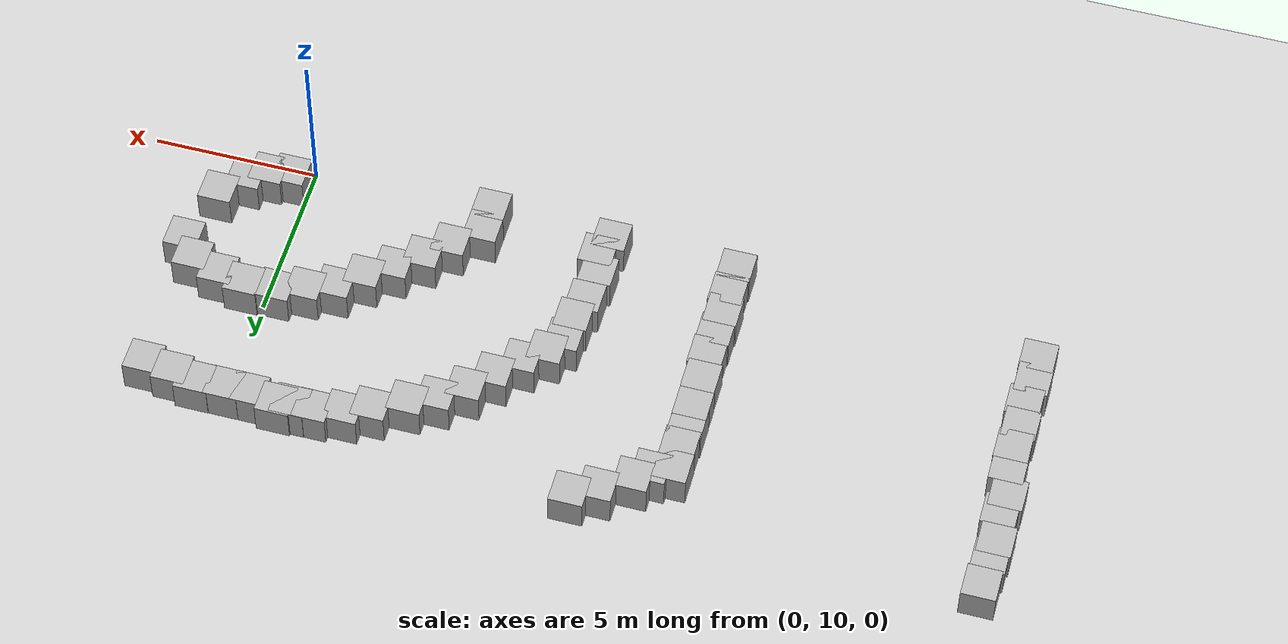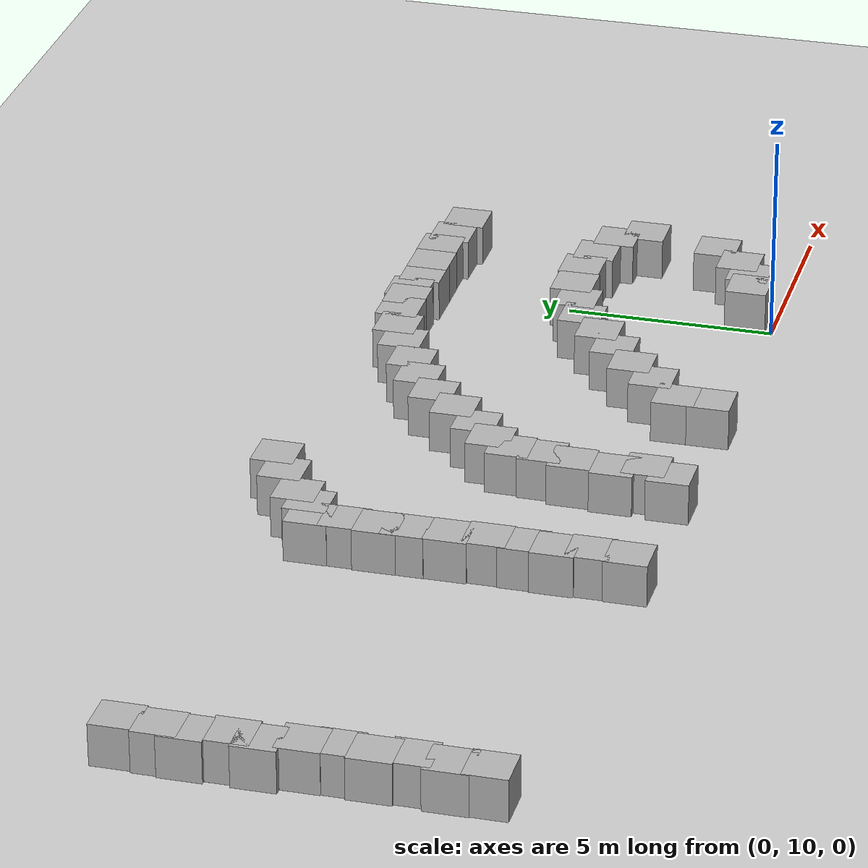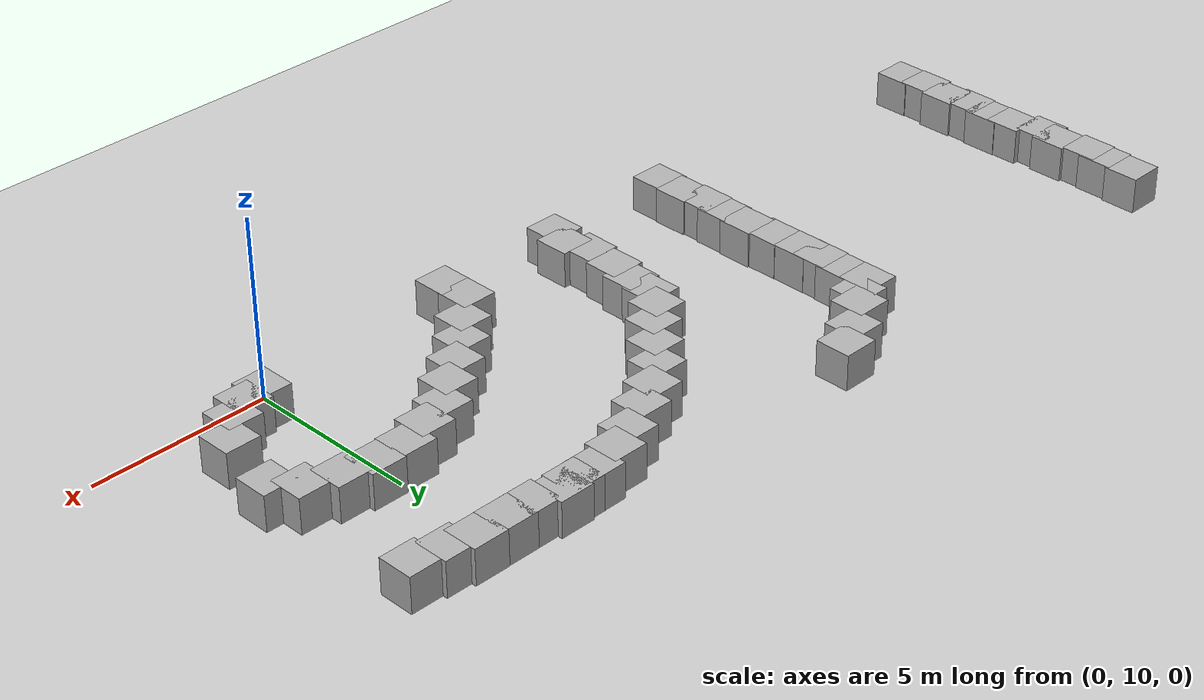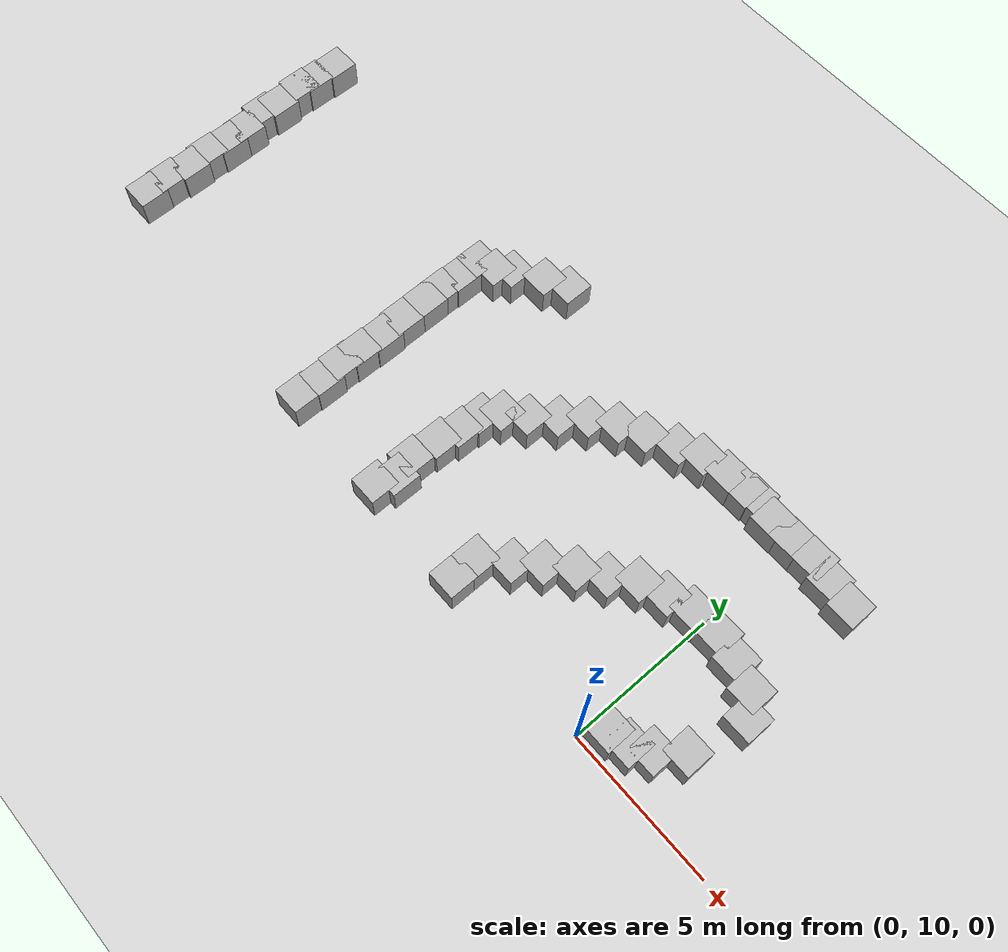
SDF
<sdf version="1.10">
 <world name="empty">
  <model name="ground_plane">
   <static>true</static>
   <link name="link">
    <collision name="collision">
     <geometry><plane><normal>0 0 1</normal><size>100 100</size></plane></geometry>
    </collision>
    <visual name="visual">
     <geometry><plane><normal>0 0 1</normal><size>100 100</size></plane></geometry>
     <material>
      <ambient>0.800000012 0.800000012 0.800000012 1</ambient>
      <diffuse>0.800000012 0.800000012 0.800000012 1</diffuse>
      <specular>0.800000012 0.800000012 0.800000012 1</specular>
     </material>
    </visual>
    <inertial>
     <mass>1</mass>
     <inertia><ixx>1</ixx><ixy>0</ixy><ixz>0</ixz><iyy>1</iyy><iyz>0</iyz><izz>1</izz></inertia>
    </inertial>
   </link>
  </model>
  <model name="box_7_30">
   <pose>-9.2735995112584675 10.423714714288682 0.5 0 0 0</pose>
   <link name="box_link">
    <inertial>
     <inertia><ixx>0.16666</ixx><ixy>0</ixy><ixz>0</ixz><iyy>0.16666</iyy><iyz>0</iyz><izz>0.16666</izz></inertia>
     <mass>1</mass>
    </inertial>
    <collision name="box_collision"><geometry><box><size>1 1 1</size></box></geometry></collision>
    <visual name="box_visual">
     <geometry><box><size>1 1 1</size></box></geometry>
     <material>
      <ambient>0.300000012 0.300000012 0.300000012 1</ambient>
      <diffuse>0.699999988 0.699999988 0.699999988 1</diffuse>
      <specular>1 1 1 1</specular>
     </material>
    </visual>
   </link>
   <static>false</static>
  </model>
  <model name="box_7_31">
   <pose>-9.0387820674815593 11.044542939793455 0.5 0 0 0</pose>
   <link name="box_link">
    <inertial>
     <inertia><ixx>0.16666</ixx><ixy>0</ixy><ixz>0</ixz><iyy>0.16666</iyy><iyz>0</iyz><izz>0.16666</izz></inertia>
     <mass>1</mass>
    </inertial>
    <collision name="box_collision"><geometry><box><size>1 1 1</size></box></geometry></collision>
    <visual name="box_visual">
     <geometry><box><size>1 1 1</size></box></geometry>
     <material>
      <ambient>0.300000012 0.300000012 0.300000012 1</ambient>
      <diffuse>0.699999988 0.699999988 0.699999988 1</diffuse>
      <specular>1 1 1 1</specular>
     </material>
    </visual>
   </link>
   <static>false</static>
  </model>
  <model name="box_7_33">
   <pose>-5.5640667379358755 10.292878600199852 0.5 0 0 0</pose>
   <link name="box_link">
    <inertial>
     <inertia><ixx>0.16666</ixx><ixy>0</ixy><ixz>0</ixz><iyy>0.16666</iyy><iyz>0</iyz><izz>0.16666</izz></inertia>
     <mass>1</mass>
    </inertial>
    <collision name="box_collision"><geometry><box><size>1 1 1</size></box></geometry></collision>
    <visual name="box_visual">
     <geometry><box><size>1 1 1</size></box></geometry>
     <material>
      <ambient>0.300000012 0.300000012 0.300000012 1</ambient>
      <diffuse>0.699999988 0.699999988 0.699999988 1</diffuse>
      <specular>1 1 1 1</specular>
     </material>
    </visual>
   </link>
   <static>false</static>
  </model>
  <model name="box_7_34">
   <pose>-5.5623751025306705 11.13049586107932 0.5 0 0 0</pose>
   <link name="box_link">
    <inertial>
     <inertia><ixx>0.16666</ixx><ixy>0</ixy><ixz>0</ixz><iyy>0.16666</iyy><iyz>0</iyz><izz>0.16666</izz></inertia>
     <mass>1</mass>
    </inertial>
    <collision name="box_collision"><geometry><box><size>1 1 1</size></box></geometry></collision>
    <visual name="box_visual">
     <geometry><box><size>1 1 1</size></box></geometry>
     <material>
      <ambient>0.300000012 0.300000012 0.300000012 1</ambient>
      <diffuse>0.699999988 0.699999988 0.699999988 1</diffuse>
      <specular>1 1 1 1</specular>
     </material>
    </visual>
   </link>
   <static>false</static>
  </model>
  <model name="box_7_35">
   <pose>-4.7906994736432598 11.847741545170857 0.5 0 0 0</pose>
   <link name="box_link">
    <inertial>
     <inertia><ixx>0.16666</ixx><ixy>0</ixy><ixz>0</ixz><iyy>0.16666</iyy><iyz>0</iyz><izz>0.16666</izz></inertia>
     <mass>1</mass>
    </inertial>
    <collision name="box_collision"><geometry><box><size>1 1 1</size></box></geometry></collision>
    <visual name="box_visual">
     <geometry><box><size>1 1 1</size></box></geometry>
     <material>
      <ambient>0.300000012 0.300000012 0.300000012 1</ambient>
      <diffuse>0.699999988 0.699999988 0.699999988 1</diffuse>
      <specular>1 1 1 1</specular>
     </material>
    </visual>
   </link>
   <static>false</static>
  </model>
  <model name="box_7_36">
   <pose>-4.1487503221513613 12.499752629387412 0.5 0 0 0</pose>
   <link name="box_link">
    <inertial>
     <inertia><ixx>0.16666</ixx><ixy>0</ixy><ixz>0</ixz><iyy>0.16666</iyy><iyz>0</iyz><izz>0.16666</izz></inertia>
     <mass>1</mass>
    </inertial>
    <collision name="box_collision"><geometry><box><size>1 1 1</size></box></geometry></collision>
    <visual name="box_visual">
     <geometry><box><size>1 1 1</size></box></geometry>
     <material>
      <ambient>0.300000012 0.300000012 0.300000012 1</ambient>
      <diffuse>0.699999988 0.699999988 0.699999988 1</diffuse>
      <specular>1 1 1 1</specular>
     </material>
    </visual>
   </link>
   <static>false</static>
  </model>
  <model name="box_7_37">
   <pose>-3.4200070702478054 13.093346036555435 0.5 0 0 0</pose>
   <link name="box_link">
    <inertial>
     <inertia><ixx>0.16666</ixx><ixy>0</ixy><ixz>0</ixz><iyy>0.16666</iyy><iyz>0</iyz><izz>0.16666</izz></inertia>
     <mass>1</mass>
    </inertial>
    <collision name="box_collision"><geometry><box><size>1 1 1</size></box></geometry></collision>
    <visual name="box_visual">
     <geometry><box><size>1 1 1</size></box></geometry>
     <material>
      <ambient>0.300000012 0.300000012 0.300000012 1</ambient>
      <diffuse>0.699999988 0.699999988 0.699999988 1</diffuse>
      <specular>1 1 1 1</specular>
     </material>
    </visual>
   </link>
   <static>false</static>
  </model>
  <model name="box_7_38">
   <pose>-2.6938789036310262 13.624460364496942 0.5 0 0 0</pose>
   <link name="box_link">
    <inertial>
     <inertia><ixx>0.16666</ixx><ixy>0</ixy><ixz>0</ixz><iyy>0.16666</iyy><iyz>0</iyz><izz>0.16666</izz></inertia>
     <mass>1</mass>
    </inertial>
    <collision name="box_collision"><geometry><box><size>1 1 1</size></box></geometry></collision>
    <visual name="box_visual">
     <geometry><box><size>1 1 1</size></box></geometry>
     <material>
      <ambient>0.300000012 0.300000012 0.300000012 1</ambient>
      <diffuse>0.699999988 0.699999988 0.699999988 1</diffuse>
      <specular>1 1 1 1</specular>
     </material>
    </visual>
   </link>
   <static>false</static>
  </model>
  <model name="box_7_39">
   <pose>-1.9989850460225402 14.212503189778559 0.5 0 0 0</pose>
   <link name="box_link">
    <inertial>
     <inertia><ixx>0.16666</ixx><ixy>0</ixy><ixz>0</ixz><iyy>0.16666</iyy><iyz>0</iyz><izz>0.16666</izz></inertia>
     <mass>1</mass>
    </inertial>
    <collision name="box_collision"><geometry><box><size>1 1 1</size></box></geometry></collision>
    <visual name="box_visual">
     <geometry><box><size>1 1 1</size></box></geometry>
     <material>
      <ambient>0.300000012 0.300000012 0.300000012 1</ambient>
      <diffuse>0.699999988 0.699999988 0.699999988 1</diffuse>
      <specular>1 1 1 1</specular>
     </material>
    </visual>
   </link>
   <static>false</static>
  </model>
  <model name="box_7_40">
   <pose>-1.1857971706400776 14.514397681147491 0.5 0 0 0</pose>
   <link name="box_link">
    <inertial>
     <inertia><ixx>0.16666</ixx><ixy>0</ixy><ixz>0</ixz><iyy>0.16666</iyy><iyz>0</iyz><izz>0.16666</izz></inertia>
     <mass>1</mass>
    </inertial>
    <collision name="box_collision"><geometry><box><size>1 1 1</size></box></geometry></collision>
    <visual name="box_visual">
     <geometry><box><size>1 1 1</size></box></geometry>
     <material>
      <ambient>0.300000012 0.300000012 0.300000012 1</ambient>
      <diffuse>0.699999988 0.699999988 0.699999988 1</diffuse>
      <specular>1 1 1 1</specular>
     </material>
    </visual>
   </link>
   <static>false</static>
  </model>
  <model name="box_7_41">
   <pose>-0.37428216863773067 14.78235191089337 0.5 0 0 0</pose>
   <link name="box_link">
    <inertial>
     <inertia><ixx>0.16666</ixx><ixy>0</ixy><ixz>0</ixz><iyy>0.16666</iyy><iyz>0</iyz><izz>0.16666</izz></inertia>
     <mass>1</mass>
    </inertial>
    <collision name="box_collision"><geometry><box><size>1 1 1</size></box></geometry></collision>
    <visual name="box_visual">
     <geometry><box><size>1 1 1</size></box></geometry>
     <material>
      <ambient>0.300000012 0.300000012 0.300000012 1</ambient>
      <diffuse>0.699999988 0.699999988 0.699999988 1</diffuse>
      <specular>1 1 1 1</specular>
     </material>
    </visual>
   </link>
   <static>false</static>
  </model>
  <model name="box_7_42">
   <pose>0.58515886419377772 14.821408982240174 0.5 0 0 0</pose>
   <link name="box_link">
    <inertial>
     <inertia><ixx>0.16666</ixx><ixy>0</ixy><ixz>0</ixz><iyy>0.16666</iyy><iyz>0</iyz><izz>0.16666</izz></inertia>
     <mass>1</mass>
    </inertial>
    <collision name="box_collision"><geometry><box><size>1 1 1</size></box></geometry></collision>
    <visual name="box_visual">
     <geometry><box><size>1 1 1</size></box></geometry>
     <material>
      <ambient>0.300000012 0.300000012 0.300000012 1</ambient>
      <diffuse>0.699999988 0.699999988 0.699999988 1</diffuse>
      <specular>1 1 1 1</specular>
     </material>
    </visual>
   </link>
   <static>false</static>
  </model>
  <model name="box_7_43">
   <pose>1.432467944502438 14.65757056502021 0.5 0 0 0</pose>
   <link name="box_link">
    <inertial>
     <inertia><ixx>0.16666</ixx><ixy>0</ixy><ixz>0</ixz><iyy>0.16666</iyy><iyz>0</iyz><izz>0.16666</izz></inertia>
     <mass>1</mass>
    </inertial>
    <collision name="box_collision"><geometry><box><size>1 1 1</size></box></geometry></collision>
    <visual name="box_visual">
     <geometry><box><size>1 1 1</size></box></geometry>
     <material>
      <ambient>0.300000012 0.300000012 0.300000012 1</ambient>
      <diffuse>0.699999988 0.699999988 0.699999988 1</diffuse>
      <specular>1 1 1 1</specular>
     </material>
    </visual>
   </link>
   <static>false</static>
  </model>
  <model name="box_7_44">
   <pose>2.313232409721576 14.347938064665058 0.5 0 0 0</pose>
   <link name="box_link">
    <inertial>
     <inertia><ixx>0.16666</ixx><ixy>0</ixy><ixz>0</ixz><iyy>0.16666</iyy><iyz>0</iyz><izz>0.16666</izz></inertia>
     <mass>1</mass>
    </inertial>
    <collision name="box_collision"><geometry><box><size>1 1 1</size></box></geometry></collision>
    <visual name="box_visual">
     <geometry><box><size>1 1 1</size></box></geometry>
     <material>
      <ambient>0.300000012 0.300000012 0.300000012 1</ambient>
      <diffuse>0.699999988 0.699999988 0.699999988 1</diffuse>
      <specular>1 1 1 1</specular>
     </material>
    </visual>
   </link>
   <static>false</static>
  </model>
  <model name="box_7_45">
   <pose>2.7931069684434808 13.714253137140469 0.5 0 0 0</pose>
   <link name="box_link">
    <inertial>
     <inertia><ixx>0.16666</ixx><ixy>0</ixy><ixz>0</ixz><iyy>0.16666</iyy><iyz>0</iyz><izz>0.16666</izz></inertia>
     <mass>1</mass>
    </inertial>
    <collision name="box_collision"><geometry><box><size>1 1 1</size></box></geometry></collision>
    <visual name="box_visual">
     <geometry><box><size>1 1 1</size></box></geometry>
     <material>
      <ambient>0.300000012 0.300000012 0.300000012 1</ambient>
      <diffuse>0.699999988 0.699999988 0.699999988 1</diffuse>
      <specular>1 1 1 1</specular>
     </material>
    </visual>
   </link>
   <static>false</static>
  </model>
  <model name="box_7_48">
   <pose>2.3654978302744891 11.836640538201699 0.5 0 0 0</pose>
   <link name="box_link">
    <inertial>
     <inertia><ixx>0.16666</ixx><ixy>0</ixy><ixz>0</ixz><iyy>0.16666</iyy><iyz>0</iyz><izz>0.16666</izz></inertia>
     <mass>1</mass>
    </inertial>
    <collision name="box_collision"><geometry><box><size>1 1 1</size></box></geometry></collision>
    <visual name="box_visual">
     <geometry><box><size>1 1 1</size></box></geometry>
     <material>
      <ambient>0.300000012 0.300000012 0.300000012 1</ambient>
      <diffuse>0.699999988 0.699999988 0.699999988 1</diffuse>
      <specular>1 1 1 1</specular>
     </material>
    </visual>
   </link>
   <static>false</static>
  </model>
  <model name="box_7_49">
   <pose>1.7334589057079319 11.148289855703363 0.5 0 0 0</pose>
   <link name="box_link">
    <inertial>
     <inertia><ixx>0.16666</ixx><ixy>0</ixy><ixz>0</ixz><iyy>0.16666</iyy><iyz>0</iyz><izz>0.16666</izz></inertia>
     <mass>1</mass>
    </inertial>
    <collision name="box_collision"><geometry><box><size>1 1 1</size></box></geometry></collision>
    <visual name="box_visual">
     <geometry><box><size>1 1 1</size></box></geometry>
     <material>
      <ambient>0.300000012 0.300000012 0.300000012 1</ambient>
      <diffuse>0.699999988 0.699999988 0.699999988 1</diffuse>
      <specular>1 1 1 1</specular>
     </material>
    </visual>
   </link>
   <static>false</static>
  </model>
  <model name="box_7_50">
   <pose>1.1521878267522441 10.792440705397343 0.5 0 0 0</pose>
   <link name="box_link">
    <inertial>
     <inertia><ixx>0.16666</ixx><ixy>0</ixy><ixz>0</ixz><iyy>0.16666</iyy><iyz>0</iyz><izz>0.16666</izz></inertia>
     <mass>1</mass>
    </inertial>
    <collision name="box_collision"><geometry><box><size>1 1 1</size></box></geometry></collision>
    <visual name="box_visual">
     <geometry><box><size>1 1 1</size></box></geometry>
     <material>
      <ambient>0.300000012 0.300000012 0.300000012 1</ambient>
      <diffuse>0.699999988 0.699999988 0.699999988 1</diffuse>
      <specular>1 1 1 1</specular>
     </material>
    </visual>
   </link>
   <static>false</static>
  </model>
  <model name="box_7_51">
   <pose>0.50710072546194684 10.665604455128944 0.5 0 0 0</pose>
   <link name="box_link">
    <inertial>
     <inertia><ixx>0.16666</ixx><ixy>0</ixy><ixz>0</ixz><iyy>0.16666</iyy><iyz>0</iyz><izz>0.16666</izz></inertia>
     <mass>1</mass>
    </inertial>
    <collision name="box_collision"><geometry><box><size>1 1 1</size></box></geometry></collision>
    <visual name="box_visual">
     <geometry><box><size>1 1 1</size></box></geometry>
     <material>
      <ambient>0.300000012 0.300000012 0.300000012 1</ambient>
      <diffuse>0.699999988 0.699999988 0.699999988 1</diffuse>
      <specular>1 1 1 1</specular>
     </material>
    </visual>
   </link>
   <static>false</static>
  </model>
  <model name="box_7_58">
   <pose>-9.220284553112073 11.737967440998757 0.5 0 0 0</pose>
   <link name="box_link">
    <inertial>
     <inertia><ixx>0.16666</ixx><ixy>0</ixy><ixz>0</ixz><iyy>0.16666</iyy><iyz>0</iyz><izz>0.16666</izz></inertia>
     <mass>1</mass>
    </inertial>
    <collision name="box_collision"><geometry><box><size>1 1 1</size></box></geometry></collision>
    <visual name="box_visual">
     <geometry><box><size>1 1 1</size></box></geometry>
     <material>
      <ambient>0.300000012 0.300000012 0.300000012 1</ambient>
      <diffuse>0.699999988 0.699999988 0.699999988 1</diffuse>
      <specular>1 1 1 1</specular>
     </material>
    </visual>
   </link>
   <static>false</static>
  </model>
  <model name="box_7_59">
   <pose>-9.1240790874169164 12.739031309984789 0.5 0 0 0</pose>
   <link name="box_link">
    <inertial>
     <inertia><ixx>0.16666</ixx><ixy>0</ixy><ixz>0</ixz><iyy>0.16666</iyy><iyz>0</iyz><izz>0.16666</izz></inertia>
     <mass>1</mass>
    </inertial>
    <collision name="box_collision"><geometry><box><size>1 1 1</size></box></geometry></collision>
    <visual name="box_visual">
     <geometry><box><size>1 1 1</size></box></geometry>
     <material>
      <ambient>0.300000012 0.300000012 0.300000012 1</ambient>
      <diffuse>0.699999988 0.699999988 0.699999988 1</diffuse>
      <specular>1 1 1 1</specular>
     </material>
    </visual>
   </link>
   <static>false</static>
  </model>
  <model name="box_7_60">
   <pose>-8.9719925039562405 13.469853923289481 0.5 0 0 0</pose>
   <link name="box_link">
    <inertial>
     <inertia><ixx>0.16666</ixx><ixy>0</ixy><ixz>0</ixz><iyy>0.16666</iyy><iyz>0</iyz><izz>0.16666</izz></inertia>
     <mass>1</mass>
    </inertial>
    <collision name="box_collision"><geometry><box><size>1 1 1</size></box></geometry></collision>
    <visual name="box_visual">
     <geometry><box><size>1 1 1</size></box></geometry>
     <material>
      <ambient>0.300000012 0.300000012 0.300000012 1</ambient>
      <diffuse>0.699999988 0.699999988 0.699999988 1</diffuse>
      <specular>1 1 1 1</specular>
     </material>
    </visual>
   </link>
   <static>false</static>
  </model>
  <model name="box_7_61">
   <pose>-8.9059337998452701 14.229038265290345 0.5 0 0 0</pose>
   <link name="box_link">
    <inertial>
     <inertia><ixx>0.16666</ixx><ixy>0</ixy><ixz>0</ixz><iyy>0.16666</iyy><iyz>0</iyz><izz>0.16666</izz></inertia>
     <mass>1</mass>
    </inertial>
    <collision name="box_collision"><geometry><box><size>1 1 1</size></box></geometry></collision>
    <visual name="box_visual">
     <geometry><box><size>1 1 1</size></box></geometry>
     <material>
      <ambient>0.300000012 0.300000012 0.300000012 1</ambient>
      <diffuse>0.699999988 0.699999988 0.699999988 1</diffuse>
      <specular>1 1 1 1</specular>
     </material>
    </visual>
   </link>
   <static>false</static>
  </model>
  <model name="box_7_62">
   <pose>-8.5532472964042583 14.780011301407548 0.5 0 0 0</pose>
   <link name="box_link">
    <inertial>
     <inertia><ixx>0.16666</ixx><ixy>0</ixy><ixz>0</ixz><iyy>0.16666</iyy><iyz>0</iyz><izz>0.16666</izz></inertia>
     <mass>1</mass>
    </inertial>
    <collision name="box_collision"><geometry><box><size>1 1 1</size></box></geometry></collision>
    <visual name="box_visual">
     <geometry><box><size>1 1 1</size></box></geometry>
     <material>
      <ambient>0.300000012 0.300000012 0.300000012 1</ambient>
      <diffuse>0.699999988 0.699999988 0.699999988 1</diffuse>
      <specular>1 1 1 1</specular>
     </material>
    </visual>
   </link>
   <static>false</static>
  </model>
  <model name="box_7_63">
   <pose>-7.9376396895116628 15.279237327084161 0.5 0 0 0</pose>
   <link name="box_link">
    <inertial>
     <inertia><ixx>0.16666</ixx><ixy>0</ixy><ixz>0</ixz><iyy>0.16666</iyy><iyz>0</iyz><izz>0.16666</izz></inertia>
     <mass>1</mass>
    </inertial>
    <collision name="box_collision"><geometry><box><size>1 1 1</size></box></geometry></collision>
    <visual name="box_visual">
     <geometry><box><size>1 1 1</size></box></geometry>
     <material>
      <ambient>0.300000012 0.300000012 0.300000012 1</ambient>
      <diffuse>0.699999988 0.699999988 0.699999988 1</diffuse>
      <specular>1 1 1 1</specular>
     </material>
    </visual>
   </link>
   <static>false</static>
  </model>
  <model name="box_7_64">
   <pose>-7.2968944773477729 15.949333449131881 0.5 0 0 0</pose>
   <link name="box_link">
    <inertial>
     <inertia><ixx>0.16666</ixx><ixy>0</ixy><ixz>0</ixz><iyy>0.16666</iyy><iyz>0</iyz><izz>0.16666</izz></inertia>
     <mass>1</mass>
    </inertial>
    <collision name="box_collision"><geometry><box><size>1 1 1</size></box></geometry></collision>
    <visual name="box_visual">
     <geometry><box><size>1 1 1</size></box></geometry>
     <material>
      <ambient>0.300000012 0.300000012 0.300000012 1</ambient>
      <diffuse>0.699999988 0.699999988 0.699999988 1</diffuse>
      <specular>1 1 1 1</specular>
     </material>
    </visual>
   </link>
   <static>false</static>
  </model>
  <model name="box_7_65">
   <pose>-6.6849275873491134 16.616198845479218 0.5 0 0 0</pose>
   <link name="box_link">
    <inertial>
     <inertia><ixx>0.16666</ixx><ixy>0</ixy><ixz>0</ixz><iyy>0.16666</iyy><iyz>0</iyz><izz>0.16666</izz></inertia>
     <mass>1</mass>
    </inertial>
    <collision name="box_collision"><geometry><box><size>1 1 1</size></box></geometry></collision>
    <visual name="box_visual">
     <geometry><box><size>1 1 1</size></box></geometry>
     <material>
      <ambient>0.300000012 0.300000012 0.300000012 1</ambient>
      <diffuse>0.699999988 0.699999988 0.699999988 1</diffuse>
      <specular>1 1 1 1</specular>
     </material>
    </visual>
   </link>
   <static>false</static>
  </model>
  <model name="box_7_66">
   <pose>-5.961108477972596 17.166800559617261 0.5 0 0 0</pose>
   <link name="box_link">
    <inertial>
     <inertia><ixx>0.16666</ixx><ixy>0</ixy><ixz>0</ixz><iyy>0.16666</iyy><iyz>0</iyz><izz>0.16666</izz></inertia>
     <mass>1</mass>
    </inertial>
    <collision name="box_collision"><geometry><box><size>1 1 1</size></box></geometry></collision>
    <visual name="box_visual">
     <geometry><box><size>1 1 1</size></box></geometry>
     <material>
      <ambient>0.300000012 0.300000012 0.300000012 1</ambient>
      <diffuse>0.699999988 0.699999988 0.699999988 1</diffuse>
      <specular>1 1 1 1</specular>
     </material>
    </visual>
   </link>
   <static>false</static>
  </model>
  <model name="box_7_67">
   <pose>-5.2091306418012691 17.545126363721593 0.5 0 0 0</pose>
   <link name="box_link">
    <inertial>
     <inertia><ixx>0.16666</ixx><ixy>0</ixy><ixz>0</ixz><iyy>0.16666</iyy><iyz>0</iyz><izz>0.16666</izz></inertia>
     <mass>1</mass>
    </inertial>
    <collision name="box_collision"><geometry><box><size>1 1 1</size></box></geometry></collision>
    <visual name="box_visual">
     <geometry><box><size>1 1 1</size></box></geometry>
     <material>
      <ambient>0.300000012 0.300000012 0.300000012 1</ambient>
      <diffuse>0.699999988 0.699999988 0.699999988 1</diffuse>
      <specular>1 1 1 1</specular>
     </material>
    </visual>
   </link>
   <static>false</static>
  </model>
  <model name="box_7_68">
   <pose>-4.2871489163924288 18.014342609943057 0.5 0 0 0</pose>
   <link name="box_link">
    <inertial>
     <inertia><ixx>0.16666</ixx><ixy>0</ixy><ixz>0</ixz><iyy>0.16666</iyy><iyz>0</iyz><izz>0.16666</izz></inertia>
     <mass>1</mass>
    </inertial>
    <collision name="box_collision"><geometry><box><size>1 1 1</size></box></geometry></collision>
    <visual name="box_visual">
     <geometry><box><size>1 1 1</size></box></geometry>
     <material>
      <ambient>0.300000012 0.300000012 0.300000012 1</ambient>
      <diffuse>0.699999988 0.699999988 0.699999988 1</diffuse>
      <specular>1 1 1 1</specular>
     </material>
    </visual>
   </link>
   <static>false</static>
  </model>
  <model name="box_7_69">
   <pose>-3.5673639064166531 18.336134655837434 0.5 0 0 0</pose>
   <link name="box_link">
    <inertial>
     <inertia><ixx>0.16666</ixx><ixy>0</ixy><ixz>0</ixz><iyy>0.16666</iyy><iyz>0</iyz><izz>0.16666</izz></inertia>
     <mass>1</mass>
    </inertial>
    <collision name="box_collision"><geometry><box><size>1 1 1</size></box></geometry></collision>
    <visual name="box_visual">
     <geometry><box><size>1 1 1</size></box></geometry>
     <material>
      <ambient>0.300000012 0.300000012 0.300000012 1</ambient>
      <diffuse>0.699999988 0.699999988 0.699999988 1</diffuse>
      <specular>1 1 1 1</specular>
     </material>
    </visual>
   </link>
   <static>false</static>
  </model>
  <model name="box_7_70">
   <pose>-2.703682277444754 18.513789435784805 0.5 0 0 0</pose>
   <link name="box_link">
    <inertial>
     <inertia><ixx>0.16666</ixx><ixy>0</ixy><ixz>0</ixz><iyy>0.16666</iyy><iyz>0</iyz><izz>0.16666</izz></inertia>
     <mass>1</mass>
    </inertial>
    <collision name="box_collision"><geometry><box><size>1 1 1</size></box></geometry></collision>
    <visual name="box_visual">
     <geometry><box><size>1 1 1</size></box></geometry>
     <material>
      <ambient>0.300000012 0.300000012 0.300000012 1</ambient>
      <diffuse>0.699999988 0.699999988 0.699999988 1</diffuse>
      <specular>1 1 1 1</specular>
     </material>
    </visual>
   </link>
   <static>false</static>
  </model>
  <model name="box_7_71">
   <pose>-1.6375281746649908 18.581874378311586 0.5 0 0 0</pose>
   <link name="box_link">
    <inertial>
     <inertia><ixx>0.16666</ixx><ixy>0</ixy><ixz>0</ixz><iyy>0.16666</iyy><iyz>0</iyz><izz>0.16666</izz></inertia>
     <mass>1</mass>
    </inertial>
    <collision name="box_collision"><geometry><box><size>1 1 1</size></box></geometry></collision>
    <visual name="box_visual">
     <geometry><box><size>1 1 1</size></box></geometry>
     <material>
      <ambient>0.300000012 0.300000012 0.300000012 1</ambient>
      <diffuse>0.699999988 0.699999988 0.699999988 1</diffuse>
      <specular>1 1 1 1</specular>
     </material>
    </visual>
   </link>
   <static>false</static>
  </model>
  <model name="box_7_72">
   <pose>-2.0408819101328506 18.524102135074649 0.5 0 0 0</pose>
   <link name="box_link">
    <inertial>
     <inertia><ixx>0.16666</ixx><ixy>0</ixy><ixz>0</ixz><iyy>0.16666</iyy><iyz>0</iyz><izz>0.16666</izz></inertia>
     <mass>1</mass>
    </inertial>
    <collision name="box_collision"><geometry><box><size>1 1 1</size></box></geometry></collision>
    <visual name="box_visual">
     <geometry><box><size>1 1 1</size></box></geometry>
     <material>
      <ambient>0.300000012 0.300000012 0.300000012 1</ambient>
      <diffuse>0.699999988 0.699999988 0.699999988 1</diffuse>
      <specular>1 1 1 1</specular>
     </material>
    </visual>
   </link>
   <static>false</static>
  </model>
  <model name="box_7_73">
   <pose>-0.77094639575461277 18.451717655949992 0.5 0 0 0</pose>
   <link name="box_link">
    <inertial>
     <inertia><ixx>0.16666</ixx><ixy>0</ixy><ixz>0</ixz><iyy>0.16666</iyy><iyz>0</iyz><izz>0.16666</izz></inertia>
     <mass>1</mass>
    </inertial>
    <collision name="box_collision"><geometry><box><size>1 1 1</size></box></geometry></collision>
    <visual name="box_visual">
     <geometry><box><size>1 1 1</size></box></geometry>
     <material>
      <ambient>0.300000012 0.300000012 0.300000012 1</ambient>
      <diffuse>0.699999988 0.699999988 0.699999988 1</diffuse>
      <specular>1 1 1 1</specular>
     </material>
    </visual>
   </link>
   <static>false</static>
  </model>
  <model name="box_7_74">
   <pose>-0.050621400044278397 18.455847443988723 0.5 0 0 0</pose>
   <link name="box_link">
    <inertial>
     <inertia><ixx>0.16666</ixx><ixy>0</ixy><ixz>0</ixz><iyy>0.16666</iyy><iyz>0</iyz><izz>0.16666</izz></inertia>
     <mass>1</mass>
    </inertial>
    <collision name="box_collision"><geometry><box><size>1 1 1</size></box></geometry></collision>
    <visual name="box_visual">
     <geometry><box><size>1 1 1</size></box></geometry>
     <material>
      <ambient>0.300000012 0.300000012 0.300000012 1</ambient>
      <diffuse>0.699999988 0.699999988 0.699999988 1</diffuse>
      <specular>1 1 1 1</specular>
     </material>
    </visual>
   </link>
   <static>false</static>
  </model>
  <model name="box_7_75">
   <pose>0.84384986475496504 18.466166990276459 0.5 0 0 0</pose>
   <link name="box_link">
    <inertial>
     <inertia><ixx>0.16666</ixx><ixy>0</ixy><ixz>0</ixz><iyy>0.16666</iyy><iyz>0</iyz><izz>0.16666</izz></inertia>
     <mass>1</mass>
    </inertial>
    <collision name="box_collision"><geometry><box><size>1 1 1</size></box></geometry></collision>
    <visual name="box_visual">
     <geometry><box><size>1 1 1</size></box></geometry>
     <material>
      <ambient>0.300000012 0.300000012 0.300000012 1</ambient>
      <diffuse>0.699999988 0.699999988 0.699999988 1</diffuse>
      <specular>1 1 1 1</specular>
     </material>
    </visual>
   </link>
   <static>false</static>
  </model>
  <model name="box_7_76">
   <pose>1.5665704397418545 18.334994022958121 0.5 0 0 0</pose>
   <link name="box_link">
    <inertial>
     <inertia><ixx>0.16666</ixx><ixy>0</ixy><ixz>0</ixz><iyy>0.16666</iyy><iyz>0</iyz><izz>0.16666</izz></inertia>
     <mass>1</mass>
    </inertial>
    <collision name="box_collision"><geometry><box><size>1 1 1</size></box></geometry></collision>
    <visual name="box_visual">
     <geometry><box><size>1 1 1</size></box></geometry>
     <material>
      <ambient>0.300000012 0.300000012 0.300000012 1</ambient>
      <diffuse>0.699999988 0.699999988 0.699999988 1</diffuse>
      <specular>1 1 1 1</specular>
     </material>
    </visual>
   </link>
   <static>false</static>
  </model>
  <model name="box_7_77">
   <pose>2.4627433681481969 18.199646434534955 0.5 0 0 0</pose>
   <link name="box_link">
    <inertial>
     <inertia><ixx>0.16666</ixx><ixy>0</ixy><ixz>0</ixz><iyy>0.16666</iyy><iyz>0</iyz><izz>0.16666</izz></inertia>
     <mass>1</mass>
    </inertial>
    <collision name="box_collision"><geometry><box><size>1 1 1</size></box></geometry></collision>
    <visual name="box_visual">
     <geometry><box><size>1 1 1</size></box></geometry>
     <material>
      <ambient>0.300000012 0.300000012 0.300000012 1</ambient>
      <diffuse>0.699999988 0.699999988 0.699999988 1</diffuse>
      <specular>1 1 1 1</specular>
     </material>
    </visual>
   </link>
   <static>false</static>
  </model>
  <model name="box_7_180">
   <pose>-10.480098237037067 19.26585307251041 0.5 0 0 0</pose>
   <link name="box_link">
    <inertial>
     <inertia><ixx>0.16666</ixx><ixy>0</ixy><ixz>0</ixz><iyy>0.16666</iyy><iyz>0</iyz><izz>0.16666</izz></inertia>
     <mass>1</mass>
    </inertial>
    <collision name="box_collision"><geometry><box><size>1 1 1</size></box></geometry></collision>
    <visual name="box_visual">
     <geometry><box><size>1 1 1</size></box></geometry>
     <material>
      <ambient>0.300000012 0.300000012 0.300000012 1</ambient>
      <diffuse>0.699999988 0.699999988 0.699999988 1</diffuse>
      <specular>1 1 1 1</specular>
     </material>
    </visual>
   </link>
   <static>false</static>
  </model>
  <model name="box_7_181">
   <pose>-11.194461209623309 18.891836663317982 0.5 0 0 0</pose>
   <link name="box_link">
    <inertial>
     <inertia><ixx>0.16666</ixx><ixy>0</ixy><ixz>0</ixz><iyy>0.16666</iyy><iyz>0</iyz><izz>0.16666</izz></inertia>
     <mass>1</mass>
    </inertial>
    <collision name="box_collision"><geometry><box><size>1 1 1</size></box></geometry></collision>
    <visual name="box_visual">
     <geometry><box><size>1 1 1</size></box></geometry>
     <material>
      <ambient>0.300000012 0.300000012 0.300000012 1</ambient>
      <diffuse>0.699999988 0.699999988 0.699999988 1</diffuse>
      <specular>1 1 1 1</specular>
     </material>
    </visual>
   </link>
   <static>false</static>
  </model>
  <model name="box_7_182">
   <pose>-12.075187642301836 18.315036178407492 0.5 0 0 0</pose>
   <link name="box_link">
    <inertial>
     <inertia><ixx>0.16666</ixx><ixy>0</ixy><ixz>0</ixz><iyy>0.16666</iyy><iyz>0</iyz><izz>0.16666</izz></inertia>
     <mass>1</mass>
    </inertial>
    <collision name="box_collision"><geometry><box><size>1 1 1</size></box></geometry></collision>
    <visual name="box_visual">
     <geometry><box><size>1 1 1</size></box></geometry>
     <material>
      <ambient>0.300000012 0.300000012 0.300000012 1</ambient>
      <diffuse>0.699999988 0.699999988 0.699999988 1</diffuse>
      <specular>1 1 1 1</specular>
     </material>
    </visual>
   </link>
   <static>false</static>
  </model>
  <model name="box_7_183">
   <pose>-12.493740654590214 17.927054091591934 0.5 0 0 0</pose>
   <link name="box_link">
    <inertial>
     <inertia><ixx>0.16666</ixx><ixy>0</ixy><ixz>0</ixz><iyy>0.16666</iyy><iyz>0</iyz><izz>0.16666</izz></inertia>
     <mass>1</mass>
    </inertial>
    <collision name="box_collision"><geometry><box><size>1 1 1</size></box></geometry></collision>
    <visual name="box_visual">
     <geometry><box><size>1 1 1</size></box></geometry>
     <material>
      <ambient>0.300000012 0.300000012 0.300000012 1</ambient>
      <diffuse>0.699999988 0.699999988 0.699999988 1</diffuse>
      <specular>1 1 1 1</specular>
     </material>
    </visual>
   </link>
   <static>false</static>
  </model>
  <model name="box_7_184">
   <pose>-13.059532065662768 17.738645021219792 0.5 0 0 0</pose>
   <link name="box_link">
    <inertial>
     <inertia><ixx>0.16666</ixx><ixy>0</ixy><ixz>0</ixz><iyy>0.16666</iyy><iyz>0</iyz><izz>0.16666</izz></inertia>
     <mass>1</mass>
    </inertial>
    <collision name="box_collision"><geometry><box><size>1 1 1</size></box></geometry></collision>
    <visual name="box_visual">
     <geometry><box><size>1 1 1</size></box></geometry>
     <material>
      <ambient>0.300000012 0.300000012 0.300000012 1</ambient>
      <diffuse>0.699999988 0.699999988 0.699999988 1</diffuse>
      <specular>1 1 1 1</specular>
     </material>
    </visual>
   </link>
   <static>false</static>
  </model>
  <model name="box_7_192">
   <pose>-22.221809175329199 19.166928219649648 0.5 0 0 0</pose>
   <link name="box_link">
    <inertial>
     <inertia><ixx>0.16666</ixx><ixy>0</ixy><ixz>0</ixz><iyy>0.16666</iyy><iyz>0</iyz><izz>0.16666</izz></inertia>
     <mass>1</mass>
    </inertial>
    <collision name="box_collision"><geometry><box><size>1 1 1</size></box></geometry></collision>
    <visual name="box_visual">
     <geometry><box><size>1 1 1</size></box></geometry>
     <material>
      <ambient>0.300000012 0.300000012 0.300000012 1</ambient>
      <diffuse>0.699999988 0.699999988 0.699999988 1</diffuse>
      <specular>1 1 1 1</specular>
     </material>
    </visual>
   </link>
   <static>false</static>
  </model>
  <model name="box_7_193">
   <pose>-13.051229923124051 16.959578318169839 0.5 0 0 0</pose>
   <link name="box_link">
    <inertial>
     <inertia><ixx>0.16666</ixx><ixy>0</ixy><ixz>0</ixz><iyy>0.16666</iyy><iyz>0</iyz><izz>0.16666</izz></inertia>
     <mass>1</mass>
    </inertial>
    <collision name="box_collision"><geometry><box><size>1 1 1</size></box></geometry></collision>
    <visual name="box_visual">
     <geometry><box><size>1 1 1</size></box></geometry>
     <material>
      <ambient>0.300000012 0.300000012 0.300000012 1</ambient>
      <diffuse>0.699999988 0.699999988 0.699999988 1</diffuse>
      <specular>1 1 1 1</specular>
     </material>
    </visual>
   </link>
   <static>false</static>
  </model>
  <model name="box_7_194">
   <pose>-13.081081257867154 16.162543922261293 0.5 0 0 0</pose>
   <link name="box_link">
    <inertial>
     <inertia><ixx>0.16666</ixx><ixy>0</ixy><ixz>0</ixz><iyy>0.16666</iyy><iyz>0</iyz><izz>0.16666</izz></inertia>
     <mass>1</mass>
    </inertial>
    <collision name="box_collision"><geometry><box><size>1 1 1</size></box></geometry></collision>
    <visual name="box_visual">
     <geometry><box><size>1 1 1</size></box></geometry>
     <material>
      <ambient>0.300000012 0.300000012 0.300000012 1</ambient>
      <diffuse>0.699999988 0.699999988 0.699999988 1</diffuse>
      <specular>1 1 1 1</specular>
     </material>
    </visual>
   </link>
   <static>false</static>
  </model>
  <model name="box_7_195">
   <pose>-13.0725257016437 15.534865823623406 0.5 0 0 0</pose>
   <link name="box_link">
    <inertial>
     <inertia><ixx>0.16666</ixx><ixy>0</ixy><ixz>0</ixz><iyy>0.16666</iyy><iyz>0</iyz><izz>0.16666</izz></inertia>
     <mass>1</mass>
    </inertial>
    <collision name="box_collision"><geometry><box><size>1 1 1</size></box></geometry></collision>
    <visual name="box_visual">
     <geometry><box><size>1 1 1</size></box></geometry>
     <material>
      <ambient>0.300000012 0.300000012 0.300000012 1</ambient>
      <diffuse>0.699999988 0.699999988 0.699999988 1</diffuse>
      <specular>1 1 1 1</specular>
     </material>
    </visual>
   </link>
   <static>false</static>
  </model>
  <model name="box_7_196">
   <pose>-13.062531884271868 14.565450755044491 0.5 0 0 0</pose>
   <link name="box_link">
    <inertial>
     <inertia><ixx>0.16666</ixx><ixy>0</ixy><ixz>0</ixz><iyy>0.16666</iyy><iyz>0</iyz><izz>0.16666</izz></inertia>
     <mass>1</mass>
    </inertial>
    <collision name="box_collision"><geometry><box><size>1 1 1</size></box></geometry></collision>
    <visual name="box_visual">
     <geometry><box><size>1 1 1</size></box></geometry>
     <material>
      <ambient>0.300000012 0.300000012 0.300000012 1</ambient>
      <diffuse>0.699999988 0.699999988 0.699999988 1</diffuse>
      <specular>1 1 1 1</specular>
     </material>
    </visual>
   </link>
   <static>false</static>
  </model>
  <model name="box_7_197">
   <pose>-13.018975685753405 13.70527310140058 0.5 0 0 0</pose>
   <link name="box_link">
    <inertial>
     <inertia><ixx>0.16666</ixx><ixy>0</ixy><ixz>0</ixz><iyy>0.16666</iyy><iyz>0</iyz><izz>0.16666</izz></inertia>
     <mass>1</mass>
    </inertial>
    <collision name="box_collision"><geometry><box><size>1 1 1</size></box></geometry></collision>
    <visual name="box_visual">
     <geometry><box><size>1 1 1</size></box></geometry>
     <material>
      <ambient>0.300000012 0.300000012 0.300000012 1</ambient>
      <diffuse>0.699999988 0.699999988 0.699999988 1</diffuse>
      <specular>1 1 1 1</specular>
     </material>
    </visual>
   </link>
   <static>false</static>
  </model>
  <model name="box_7_198">
   <pose>-13.046553787371108 12.874278669417263 0.5 0 0 0</pose>
   <link name="box_link">
    <inertial>
     <inertia><ixx>0.16666</ixx><ixy>0</ixy><ixz>0</ixz><iyy>0.16666</iyy><iyz>0</iyz><izz>0.16666</izz></inertia>
     <mass>1</mass>
    </inertial>
    <collision name="box_collision"><geometry><box><size>1 1 1</size></box></geometry></collision>
    <visual name="box_visual">
     <geometry><box><size>1 1 1</size></box></geometry>
     <material>
      <ambient>0.300000012 0.300000012 0.300000012 1</ambient>
      <diffuse>0.699999988 0.699999988 0.699999988 1</diffuse>
      <specular>1 1 1 1</specular>
     </material>
    </visual>
   </link>
   <static>false</static>
  </model>
  <model name="box_7_199">
   <pose>-13.079094341539045 12.154682329260403 0.5 0 0 0</pose>
   <link name="box_link">
    <inertial>
     <inertia><ixx>0.16666</ixx><ixy>0</ixy><ixz>0</ixz><iyy>0.16666</iyy><iyz>0</iyz><izz>0.16666</izz></inertia>
     <mass>1</mass>
    </inertial>
    <collision name="box_collision"><geometry><box><size>1 1 1</size></box></geometry></collision>
    <visual name="box_visual">
     <geometry><box><size>1 1 1</size></box></geometry>
     <material>
      <ambient>0.300000012 0.300000012 0.300000012 1</ambient>
      <diffuse>0.699999988 0.699999988 0.699999988 1</diffuse>
      <specular>1 1 1 1</specular>
     </material>
    </visual>
   </link>
   <static>false</static>
  </model>
  <model name="box_7_200">
   <pose>-13.037683318207767 11.389728670979084 0.5 0 0 0</pose>
   <link name="box_link">
    <inertial>
     <inertia><ixx>0.16666</ixx><ixy>0</ixy><ixz>0</ixz><iyy>0.16666</iyy><iyz>0</iyz><izz>0.16666</izz></inertia>
     <mass>1</mass>
    </inertial>
    <collision name="box_collision"><geometry><box><size>1 1 1</size></box></geometry></collision>
    <visual name="box_visual">
     <geometry><box><size>1 1 1</size></box></geometry>
     <material>
      <ambient>0.300000012 0.300000012 0.300000012 1</ambient>
      <diffuse>0.699999988 0.699999988 0.699999988 1</diffuse>
      <specular>1 1 1 1</specular>
     </material>
    </visual>
   </link>
   <static>false</static>
  </model>
  <model name="box_7_201">
   <pose>-13.06567134845157 10.513930428448521 0.5 0 0 0</pose>
   <link name="box_link">
    <inertial>
     <inertia><ixx>0.16666</ixx><ixy>0</ixy><ixz>0</ixz><iyy>0.16666</iyy><iyz>0</iyz><izz>0.16666</izz></inertia>
     <mass>1</mass>
    </inertial>
    <collision name="box_collision"><geometry><box><size>1 1 1</size></box></geometry></collision>
    <visual name="box_visual">
     <geometry><box><size>1 1 1</size></box></geometry>
     <material>
      <ambient>0.300000012 0.300000012 0.300000012 1</ambient>
      <diffuse>0.699999988 0.699999988 0.699999988 1</diffuse>
      <specular>1 1 1 1</specular>
     </material>
    </visual>
   </link>
   <static>false</static>
  </model>
  <model name="box_7_209">
   <pose>-22.273868255556387 18.254883853441793 0.5 0 0 0</pose>
   <link name="box_link">
    <inertial>
     <inertia><ixx>0.16666</ixx><ixy>0</ixy><ixz>0</ixz><iyy>0.16666</iyy><iyz>0</iyz><izz>0.16666</izz></inertia>
     <mass>1</mass>
    </inertial>
    <collision name="box_collision"><geometry><box><size>1 1 1</size></box></geometry></collision>
    <visual name="box_visual">
     <geometry><box><size>1 1 1</size></box></geometry>
     <material>
      <ambient>0.300000012 0.300000012 0.300000012 1</ambient>
      <diffuse>0.699999988 0.699999988 0.699999988 1</diffuse>
      <specular>1 1 1 1</specular>
     </material>
    </visual>
   </link>
   <static>false</static>
  </model>
  <model name="box_7_210">
   <pose>-22.31680568318103 17.690879209584018 0.5 0 0 0</pose>
   <link name="box_link">
    <inertial>
     <inertia><ixx>0.16666</ixx><ixy>0</ixy><ixz>0</ixz><iyy>0.16666</iyy><iyz>0</iyz><izz>0.16666</izz></inertia>
     <mass>1</mass>
    </inertial>
    <collision name="box_collision"><geometry><box><size>1 1 1</size></box></geometry></collision>
    <visual name="box_visual">
     <geometry><box><size>1 1 1</size></box></geometry>
     <material>
      <ambient>0.300000012 0.300000012 0.300000012 1</ambient>
      <diffuse>0.699999988 0.699999988 0.699999988 1</diffuse>
      <specular>1 1 1 1</specular>
     </material>
    </visual>
   </link>
   <static>false</static>
  </model>
  <model name="box_7_211">
   <pose>-22.22743237007472 16.719436604524816 0.5 0 0 0</pose>
   <link name="box_link">
    <inertial>
     <inertia><ixx>0.16666</ixx><ixy>0</ixy><ixz>0</ixz><iyy>0.16666</iyy><iyz>0</iyz><izz>0.16666</izz></inertia>
     <mass>1</mass>
    </inertial>
    <collision name="box_collision"><geometry><box><size>1 1 1</size></box></geometry></collision>
    <visual name="box_visual">
     <geometry><box><size>1 1 1</size></box></geometry>
     <material>
      <ambient>0.300000012 0.300000012 0.300000012 1</ambient>
      <diffuse>0.699999988 0.699999988 0.699999988 1</diffuse>
      <specular>1 1 1 1</specular>
     </material>
    </visual>
   </link>
   <static>false</static>
  </model>
  <model name="box_7_212">
   <pose>-22.308640875733403 16.11654517786727 0.5 0 0 0</pose>
   <link name="box_link">
    <inertial>
     <inertia><ixx>0.16666</ixx><ixy>0</ixy><ixz>0</ixz><iyy>0.16666</iyy><iyz>0</iyz><izz>0.16666</izz></inertia>
     <mass>1</mass>
    </inertial>
    <collision name="box_collision"><geometry><box><size>1 1 1</size></box></geometry></collision>
    <visual name="box_visual">
     <geometry><box><size>1 1 1</size></box></geometry>
     <material>
      <ambient>0.300000012 0.300000012 0.300000012 1</ambient>
      <diffuse>0.699999988 0.699999988 0.699999988 1</diffuse>
      <specular>1 1 1 1</specular>
     </material>
    </visual>
   </link>
   <static>false</static>
  </model>
  <model name="box_7_213">
   <pose>-22.145048712097115 15.239654287258155 0.5 0 0 0</pose>
   <link name="box_link">
    <inertial>
     <inertia><ixx>0.16666</ixx><ixy>0</ixy><ixz>0</ixz><iyy>0.16666</iyy><iyz>0</iyz><izz>0.16666</izz></inertia>
     <mass>1</mass>
    </inertial>
    <collision name="box_collision"><geometry><box><size>1 1 1</size></box></geometry></collision>
    <visual name="box_visual">
     <geometry><box><size>1 1 1</size></box></geometry>
     <material>
      <ambient>0.300000012 0.300000012 0.300000012 1</ambient>
      <diffuse>0.699999988 0.699999988 0.699999988 1</diffuse>
      <specular>1 1 1 1</specular>
     </material>
    </visual>
   </link>
   <static>false</static>
  </model>
  <model name="box_7_214">
   <pose>-22.124103072059523 14.500235501263296 0.5 0 0 0</pose>
   <link name="box_link">
    <inertial>
     <inertia><ixx>0.16666</ixx><ixy>0</ixy><ixz>0</ixz><iyy>0.16666</iyy><iyz>0</iyz><izz>0.16666</izz></inertia>
     <mass>1</mass>
    </inertial>
    <collision name="box_collision"><geometry><box><size>1 1 1</size></box></geometry></collision>
    <visual name="box_visual">
     <geometry><box><size>1 1 1</size></box></geometry>
     <material>
      <ambient>0.300000012 0.300000012 0.300000012 1</ambient>
      <diffuse>0.699999988 0.699999988 0.699999988 1</diffuse>
      <specular>1 1 1 1</specular>
     </material>
    </visual>
   </link>
   <static>false</static>
  </model>
  <model name="box_7_215">
   <pose>-22.169611343107988 13.720205265280956 0.5 0 0 0</pose>
   <link name="box_link">
    <inertial>
     <inertia><ixx>0.16666</ixx><ixy>0</ixy><ixz>0</ixz><iyy>0.16666</iyy><iyz>0</iyz><izz>0.16666</izz></inertia>
     <mass>1</mass>
    </inertial>
    <collision name="box_collision"><geometry><box><size>1 1 1</size></box></geometry></collision>
    <visual name="box_visual">
     <geometry><box><size>1 1 1</size></box></geometry>
     <material>
      <ambient>0.300000012 0.300000012 0.300000012 1</ambient>
      <diffuse>0.699999988 0.699999988 0.699999988 1</diffuse>
      <specular>1 1 1 1</specular>
     </material>
    </visual>
   </link>
   <static>false</static>
  </model>
  <model name="box_7_216">
   <pose>-22.112700199469792 12.938182773202751 0.5 0 0 0</pose>
   <link name="box_link">
    <inertial>
     <inertia><ixx>0.16666</ixx><ixy>0</ixy><ixz>0</ixz><iyy>0.16666</iyy><iyz>0</iyz><izz>0.16666</izz></inertia>
     <mass>1</mass>
    </inertial>
    <collision name="box_collision"><geometry><box><size>1 1 1</size></box></geometry></collision>
    <visual name="box_visual">
     <geometry><box><size>1 1 1</size></box></geometry>
     <material>
      <ambient>0.300000012 0.300000012 0.300000012 1</ambient>
      <diffuse>0.699999988 0.699999988 0.699999988 1</diffuse>
      <specular>1 1 1 1</specular>
     </material>
    </visual>
   </link>
   <static>false</static>
  </model>
  <model name="box_7_217">
   <pose>-22.19934763257455 12.11754630623277 0.5 0 0 0</pose>
   <link name="box_link">
    <inertial>
     <inertia><ixx>0.16666</ixx><ixy>0</ixy><ixz>0</ixz><iyy>0.16666</iyy><iyz>0</iyz><izz>0.16666</izz></inertia>
     <mass>1</mass>
    </inertial>
    <collision name="box_collision"><geometry><box><size>1 1 1</size></box></geometry></collision>
    <visual name="box_visual">
     <geometry><box><size>1 1 1</size></box></geometry>
     <material>
      <ambient>0.300000012 0.300000012 0.300000012 1</ambient>
      <diffuse>0.699999988 0.699999988 0.699999988 1</diffuse>
      <specular>1 1 1 1</specular>
     </material>
    </visual>
   </link>
   <static>false</static>
  </model>
  <model name="box_7_218">
   <pose>-22.175721827354529 11.294100677702698 0.5 0 0 0</pose>
   <link name="box_link">
    <inertial>
     <inertia><ixx>0.16666</ixx><ixy>0</ixy><ixz>0</ixz><iyy>0.16666</iyy><iyz>0</iyz><izz>0.16666</izz></inertia>
     <mass>1</mass>
    </inertial>
    <collision name="box_collision"><geometry><box><size>1 1 1</size></box></geometry></collision>
    <visual name="box_visual">
     <geometry><box><size>1 1 1</size></box></geometry>
     <material>
      <ambient>0.300000012 0.300000012 0.300000012 1</ambient>
      <diffuse>0.699999988 0.699999988 0.699999988 1</diffuse>
      <specular>1 1 1 1</specular>
     </material>
    </visual>
   </link>
   <static>false</static>
  </model>
 </world>
</sdf>
